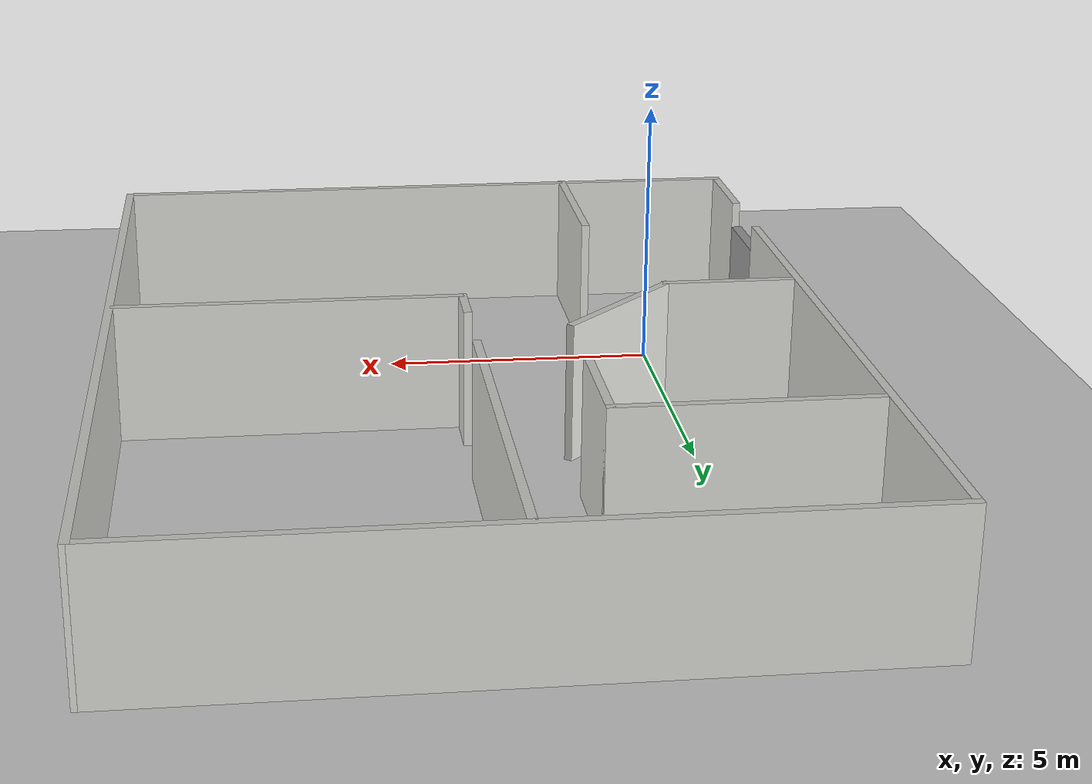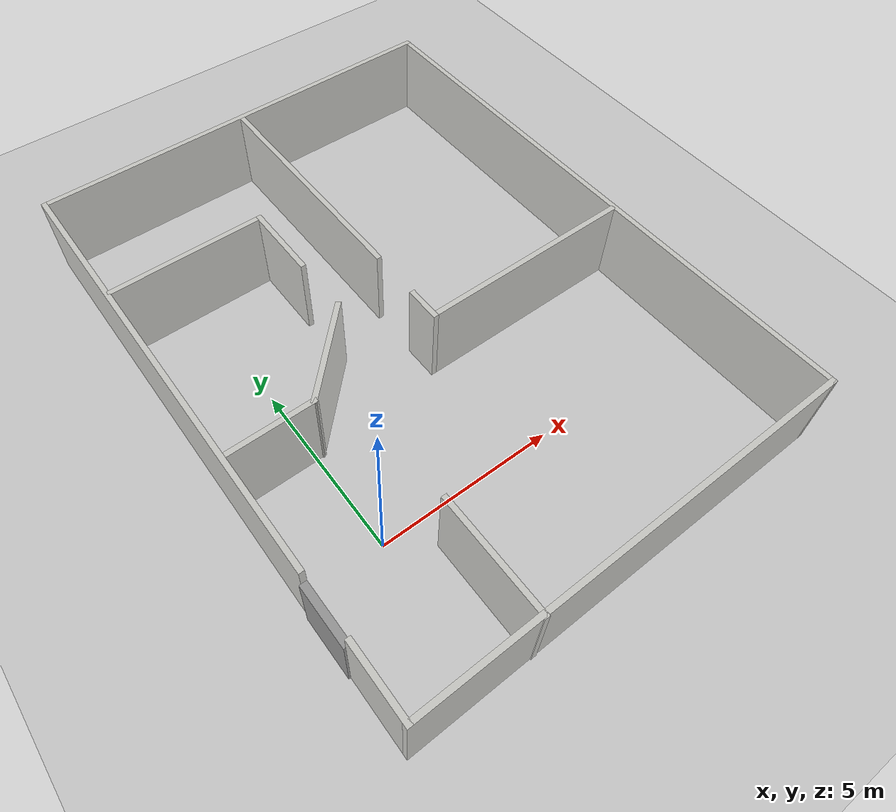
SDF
<sdf version="1.7">
 <world name="default">
  <light name="sun" type="directional">
   <pose>0 0 10 0 -0 0</pose>
   <diffuse>0.8 0.8 0.8 1</diffuse>
   <specular>0.2 0.2 0.2 1</specular>
   <attenuation>
    <range>1000</range>
    <constant>0.9</constant>
    <linear>0.01</linear>
    <quadratic>0.001</quadratic>
   </attenuation>
   <direction>-0.5 0.1 -0.9</direction>
   <spot><inner_angle>0</inner_angle><outer_angle>0</outer_angle><falloff>0</falloff></spot>
  </light>
  <model name="ground_plane">
   <static>1</static>
   <link name="link">
    <collision name="collision">
     <geometry><plane><normal>0 0 1</normal><size>100 100</size></plane></geometry>
     <surface>
      <contact><collide_bitmask>65535</collide_bitmask></contact>
      <friction><ode><mu>100</mu><mu2>50</mu2></ode></friction>
     </surface>
    </collision>
    <visual name="visual">
     <cast_shadows>0</cast_shadows>
     <geometry><plane><normal>0 0 1</normal><size>100 100</size></plane></geometry>
     <material>
      <script><uri>file://media/materials/scripts/gazebo.material</uri><name>Gazebo/Grey</name></script>
     </material>
    </visual>
   </link>
  </model>
  <gravity>0 0 -9.8</gravity>
  <magnetic_field>6e-06 2.3e-05 -4.2e-05</magnetic_field>
  <atmosphere type="adiabatic"/>
  <physics type="ode">
   <max_step_size>0.001</max_step_size>
   <real_time_factor>1</real_time_factor>
   <real_time_update_rate>1000</real_time_update_rate>
  </physics>
  <scene><ambient>0.4 0.4 0.4 1</ambient><background>0.7 0.7 0.7 1</background><shadows>1</shadows></scene>
  <spherical_coordinates>
   <surface_model>EARTH_WGS84</surface_model>
   <latitude_deg>0</latitude_deg>
   <longitude_deg>0</longitude_deg>
   <elevation>0</elevation>
   <heading_deg>0</heading_deg>
  </spherical_coordinates>
  <model name="CreateHouse">
   <pose>3.91869 4.3454 0 0 0 -1.5624</pose>
   <link name="Door_5">
    <collision name="Door_5_Collision">
     <geometry><box><size>1.60348 0.2 2</size></box></geometry>
     <pose>0 0 1 0 -0 0</pose>
    </collision>
    <visual name="Door_5_Visual">
     <pose>0 0 1 0 -0 0</pose>
     <geometry><box><size>1.60348 0.2 2</size></box></geometry>
     <material>
      <script><uri>file://media/materials/scripts/gazebo.material</uri><name>Gazebo/Grey</name></script>
     </material>
    </visual>
    <pose>5.49158 -6.20281 0 0 -0 -3.13458</pose>
   </link>
   <link name="Wall_20">
    <collision name="Wall_20_Collision">
     <geometry><box><size>16.6068 0.15 2.5</size></box></geometry>
     <pose>0 0 1.25 0 -0 0</pose>
    </collision>
    <visual name="Wall_20_Visual">
     <pose>0 0 1.25 0 -0 0</pose>
     <geometry><box><size>16.6068 0.15 2.5</size></box></geometry>
     <material>
      <script><uri>file://media/materials/scripts/gazebo.material</uri><name>Gazebo/CeilingTiled</name></script>
      <ambient>0.996078 0.47451 0.0196078 1</ambient>
     </material>
     <meta><layer>0</layer></meta>
    </visual>
    <pose>-0.011755 6.17499 0 0 -0 0.000416</pose>
   </link>
   <link name="Wall_22">
    <collision name="Wall_22_Collision">
     <geometry><box><size>4.5 0.15 2.5</size></box></geometry>
     <pose>0 0 1.25 0 -0 0</pose>
    </collision>
    <visual name="Wall_22_Visual">
     <pose>0 0 1.25 0 -0 0</pose>
     <geometry><box><size>4.5 0.15 2.5</size></box></geometry>
     <material>
      <script><uri>file://media/materials/scripts/gazebo.material</uri><name>Gazebo/CeilingTiled</name></script>
      <ambient>0.996078 0.47451 0.0196078 1</ambient>
     </material>
     <meta><layer>0</layer></meta>
    </visual>
    <pose>-4.32025 -3.91741 0 0 -0 1.5708</pose>
   </link>
   <link name="Wall_23">
    <collision name="Wall_23_Collision">
     <geometry><box><size>2.25 0.15 2.5</size></box></geometry>
     <pose>0 0 1.25 0 -0 0</pose>
    </collision>
    <visual name="Wall_23_Visual">
     <pose>0 0 1.25 0 -0 0</pose>
     <geometry><box><size>2.25 0.15 2.5</size></box></geometry>
     <material>
      <script><uri>file://media/materials/scripts/gazebo.material</uri><name>Gazebo/CeilingTiled</name></script>
      <ambient>0.996078 0.47451 0.0196078 1</ambient>
     </material>
     <meta><layer>0</layer></meta>
    </visual>
    <pose>-3.27025 -1.74241 0 0 -0 0</pose>
   </link>
   <link name="Wall_26">
    <collision name="Wall_26_Collision">
     <geometry><box><size>2.5 0.15 2.5</size></box></geometry>
     <pose>0 0 1.25 0 -0 0</pose>
    </collision>
    <visual name="Wall_26_Visual">
     <pose>0 0 1.25 0 -0 0</pose>
     <geometry><box><size>2.5 0.15 2.5</size></box></geometry>
     <material>
      <script><uri>file://media/materials/scripts/gazebo.material</uri><name>Gazebo/CeilingTiled</name></script>
      <ambient>0.996078 0.47451 0.0196078 1</ambient>
     </material>
     <meta><layer>0</layer></meta>
    </visual>
    <pose>1.43708 -4.92959 0 0 -0 -1.5708</pose>
   </link>
   <link name="Wall_3">
    <collision name="Wall_3_Collision">
     <geometry><box><size>12.5 0.15 2.5</size></box></geometry>
     <pose>0 0 1.25 0 -0 0</pose>
    </collision>
    <visual name="Wall_3_Visual">
     <pose>0 0 1.25 0 -0 0</pose>
     <geometry><box><size>12.5 0.15 2.5</size></box></geometry>
     <material>
      <script><uri>file://media/materials/scripts/gazebo.material</uri><name>Gazebo/CeilingTiled</name></script>
      <ambient>0.996078 0.47451 0.0196078 1</ambient>
     </material>
     <meta><layer>0</layer></meta>
    </visual>
    <pose>-8.24017 -0.003436 0 0 -0 -1.5708</pose>
   </link>
   <link name="Wall_30">
    <collision name="Wall_30_Collision">
     <geometry><box><size>3.25 0.15 2.5</size></box></geometry>
     <pose>0 0 1.25 0 -0 0</pose>
    </collision>
    <visual name="Wall_30_Visual">
     <pose>0 0 1.25 0 -0 0</pose>
     <geometry><box><size>3.25 0.15 2.5</size></box></geometry>
     <material>
      <script><uri>file://media/materials/scripts/gazebo.material</uri><name>Gazebo/CeilingTiled</name></script>
      <ambient>0.996078 0.47451 0.0196078 1</ambient>
     </material>
     <meta><layer>0</layer></meta>
    </visual>
    <pose>6.6902 -2.86142 0 0 -0 0</pose>
   </link>
   <link name="Wall_32">
    <collision name="Wall_32_Collision">
     <geometry><box><size>6.25 0.15 2.5</size></box></geometry>
     <pose>0 0 1.25 0 -0 0</pose>
    </collision>
    <visual name="Wall_32_Visual">
     <pose>0 0 1.25 0 -0 0</pose>
     <geometry><box><size>6.25 0.15 2.5</size></box></geometry>
     <material>
      <script><uri>file://media/materials/scripts/gazebo.material</uri><name>Gazebo/CeilingTiled</name></script>
      <ambient>0.996078 0.47451 0.0196078 1</ambient>
     </material>
     <meta><layer>0</layer></meta>
    </visual>
    <pose>1.11847 3.02902 0 0 -0 -1.5708</pose>
   </link>
   <link name="Wall_39">
    <collision name="Wall_39_Collision">
     <geometry><box><size>1 0.15 2.5</size></box></geometry>
     <pose>0 0 1.25 0 -0 0</pose>
    </collision>
    <visual name="Wall_39_Visual">
     <pose>0 0 1.25 0 -0 0</pose>
     <geometry><box><size>1 0.15 2.5</size></box></geometry>
     <material>
      <script><uri>file://media/materials/scripts/gazebo.material</uri><name>Gazebo/CeilingTiled</name></script>
      <ambient>0.996078 0.47451 0.0196078 1</ambient>
     </material>
     <meta><layer>0</layer></meta>
    </visual>
    <pose>0.693467 -0.020984 0 0 -0 3.14159</pose>
   </link>
   <link name="Wall_4">
    <collision name="Wall_4_Collision">
     <geometry><box><size>13 0.15 2.5</size></box></geometry>
     <pose>0 0 1.25 0 -0 0</pose>
    </collision>
    <visual name="Wall_4_Visual">
     <pose>0 0 1.25 0 -0 0</pose>
     <geometry><box><size>13 0.15 2.5</size></box></geometry>
     <material>
      <script><uri>file://media/materials/scripts/gazebo.material</uri><name>Gazebo/CeilingTiled</name></script>
      <ambient>0.996078 0.47451 0.0196078 1</ambient>
     </material>
     <meta><layer>0</layer></meta>
    </visual>
    <pose>-1.81517 -6.17844 0 0 -0 0</pose>
   </link>
   <link name="Wall_41">
    <collision name="Wall_41_Collision">
     <geometry><box><size>7 0.15 2.5</size></box></geometry>
     <pose>0 0 1.25 0 -0 0</pose>
    </collision>
    <visual name="Wall_41_Visual">
     <pose>0 0 1.25 0 -0 0</pose>
     <geometry><box><size>7 0.15 2.5</size></box></geometry>
     <material>
      <script><uri>file://media/materials/scripts/gazebo.material</uri><name>Gazebo/CeilingTiled</name></script>
      <ambient>0.996078 0.47451 0.0196078 1</ambient>
     </material>
     <meta><layer>0</layer></meta>
    </visual>
    <pose>-4.70081 -0.021236 0 0 -0 3.14159</pose>
   </link>
   <link name="Wall_52">
    <collision name="Wall_52_Collision">
     <geometry><box><size>3 0.15 2.5</size></box></geometry>
     <pose>0 0 1.25 0 -0 0</pose>
    </collision>
    <visual name="Wall_52_Visual">
     <pose>0 0 1.25 0 -0 0</pose>
     <geometry><box><size>3 0.15 2.5</size></box></geometry>
     <material>
      <script><uri>file://media/materials/scripts/gazebo.material</uri><name>Gazebo/CeilingTiled</name></script>
      <ambient>0.996078 0.47451 0.0196078 1</ambient>
     </material>
     <meta><layer>0</layer></meta>
    </visual>
    <pose>0.429453 -2.74696 0 0 -0 2.35619</pose>
   </link>
   <link name="Wall_6">
    <collision name="Wall_6_Collision">
     <geometry><box><size>2 0.15 2.5</size></box></geometry>
     <pose>0 0 1.25 0 -0 0</pose>
    </collision>
    <visual name="Wall_6_Visual">
     <pose>0 0 1.25 0 -0 0</pose>
     <geometry><box><size>2 0.15 2.5</size></box></geometry>
     <material>
      <script><uri>file://media/materials/scripts/gazebo.material</uri><name>Gazebo/CeilingTiled</name></script>
      <ambient>0.996078 0.47451 0.0196078 1</ambient>
     </material>
     <meta><layer>0</layer></meta>
    </visual>
    <pose>7.29166 -6.17159 0 0 -0 0</pose>
   </link>
   <link name="Wall_7">
    <collision name="Wall_7_Collision">
     <geometry><box><size>12.5 0.15 2.5</size></box></geometry>
     <pose>0 0 1.25 0 -0 0</pose>
    </collision>
    <visual name="Wall_7_Visual">
     <pose>0 0 1.25 0 -0 0</pose>
     <geometry><box><size>12.5 0.15 2.5</size></box></geometry>
     <material>
      <script><uri>file://media/materials/scripts/gazebo.material</uri><name>Gazebo/CeilingTiled</name></script>
      <ambient>0.996078 0.47451 0.0196078 1</ambient>
     </material>
     <meta><layer>0</layer></meta>
    </visual>
    <pose>8.21666 0.003406 0 0 -0 1.5708</pose>
   </link>
   <static>1</static>
  </model>
 </world>
</sdf>
